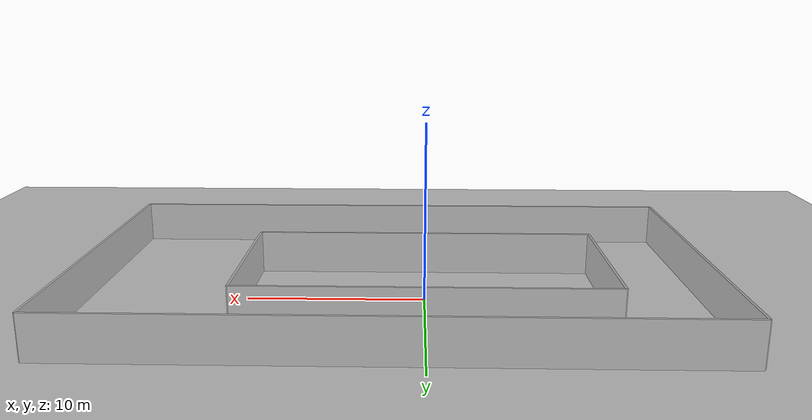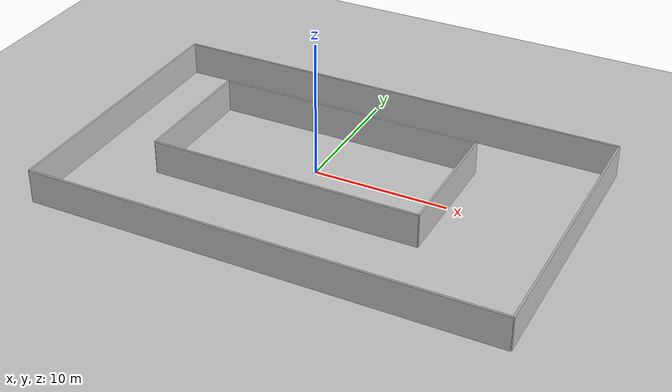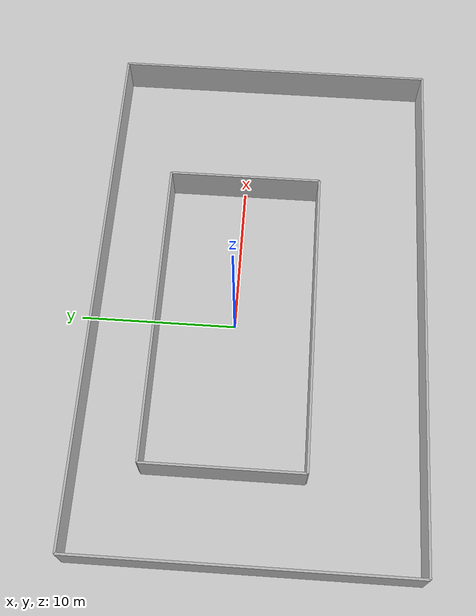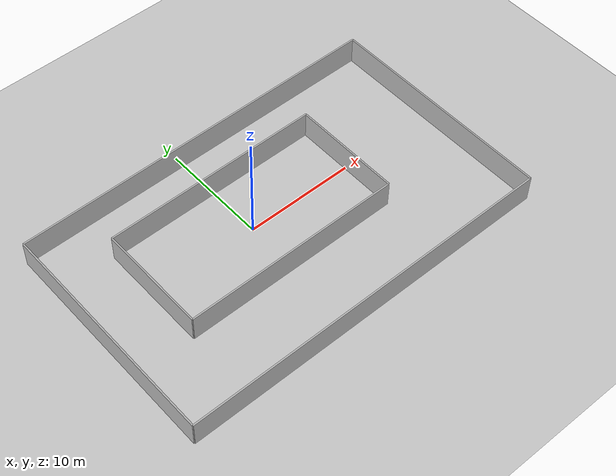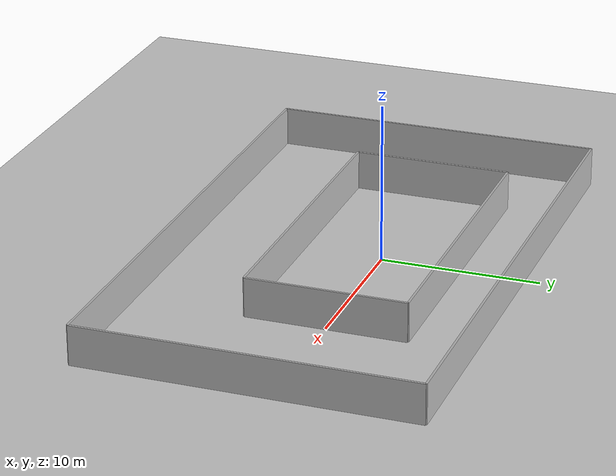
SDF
<?xml version="1.0" ?>
<sdf version="1.7">
  <world name="varying_width_track">
    <spherical_coordinates>
      <latitude_deg>0</latitude_deg>
      <longitude_deg>0</longitude_deg>
      <elevation>0</elevation>
      <heading_deg>0</heading_deg>
    </spherical_coordinates>

    <include>
      <uri>model://sun</uri>
    </include>
    <include>
      <uri>model://ground_plane</uri>
    </include>

    <model name="varying_width_walls">
      <static>1</static>

      <!-- Outer perimeter: south y=-12, east x=19, north y=9, west x=-15.5 -->
      <link name="outer_south">
        <pose>1.75 -12 0 0 0 0</pose>
        <collision name="collision">
          <pose>0 0 1.25 0 0 0</pose>
          <geometry><box><size>34.5 0.15 2.5</size></box></geometry>
        </collision>
        <visual name="visual">
          <pose>0 0 1.25 0 0 0</pose>
          <geometry><box><size>34.5 0.15 2.5</size></box></geometry>
        </visual>
      </link>
      <link name="outer_north">
        <pose>1.75 9 0 0 0 0</pose>
        <collision name="collision">
          <pose>0 0 1.25 0 0 0</pose>
          <geometry><box><size>34.5 0.15 2.5</size></box></geometry>
        </collision>
        <visual name="visual">
          <pose>0 0 1.25 0 0 0</pose>
          <geometry><box><size>34.5 0.15 2.5</size></box></geometry>
        </visual>
      </link>
      <link name="outer_west">
        <pose>-15.5 -1.5 0 0 0 1.5708</pose>
        <collision name="collision">
          <pose>0 0 1.25 0 0 0</pose>
          <geometry><box><size>21 0.15 2.5</size></box></geometry>
        </collision>
        <visual name="visual">
          <pose>0 0 1.25 0 0 0</pose>
          <geometry><box><size>21 0.15 2.5</size></box></geometry>
        </visual>
      </link>
      <link name="outer_east">
        <pose>19 -1.5 0 0 0 1.5708</pose>
        <collision name="collision">
          <pose>0 0 1.25 0 0 0</pose>
          <geometry><box><size>21 0.15 2.5</size></box></geometry>
        </collision>
        <visual name="visual">
          <pose>0 0 1.25 0 0 0</pose>
          <geometry><box><size>21 0.15 2.5</size></box></geometry>
        </visual>
      </link>

      <!-- Inner island: fixed 20x10m, corners at (+-10, +-5) -->
      <link name="inner_south">
        <pose>0 -5 0 0 0 0</pose>
        <collision name="collision">
          <pose>0 0 1.25 0 0 0</pose>
          <geometry><box><size>20 0.15 2.5</size></box></geometry>
        </collision>
        <visual name="visual">
          <pose>0 0 1.25 0 0 0</pose>
          <geometry><box><size>20 0.15 2.5</size></box></geometry>
        </visual>
      </link>
      <link name="inner_north">
        <pose>0 5 0 0 0 0</pose>
        <collision name="collision">
          <pose>0 0 1.25 0 0 0</pose>
          <geometry><box><size>20 0.15 2.5</size></box></geometry>
        </collision>
        <visual name="visual">
          <pose>0 0 1.25 0 0 0</pose>
          <geometry><box><size>20 0.15 2.5</size></box></geometry>
        </visual>
      </link>
      <link name="inner_west">
        <pose>-10 0 0 0 0 1.5708</pose>
        <collision name="collision">
          <pose>0 0 1.25 0 0 0</pose>
          <geometry><box><size>10 0.15 2.5</size></box></geometry>
        </collision>
        <visual name="visual">
          <pose>0 0 1.25 0 0 0</pose>
          <geometry><box><size>10 0.15 2.5</size></box></geometry>
        </visual>
      </link>
      <link name="inner_east">
        <pose>10 0 0 0 0 1.5708</pose>
        <collision name="collision">
          <pose>0 0 1.25 0 0 0</pose>
          <geometry><box><size>10 0.15 2.5</size></box></geometry>
        </collision>
        <visual name="visual">
          <pose>0 0 1.25 0 0 0</pose>
          <geometry><box><size>10 0.15 2.5</size></box></geometry>
        </visual>
      </link>
    </model>

    <physics type="ode">
      <real_time_update_rate>1000.0</real_time_update_rate>
      <max_step_size>0.001</max_step_size>
    </physics>
  </world>
</sdf>
